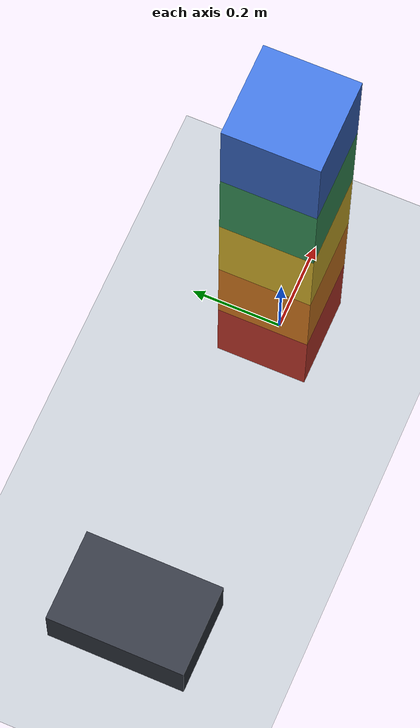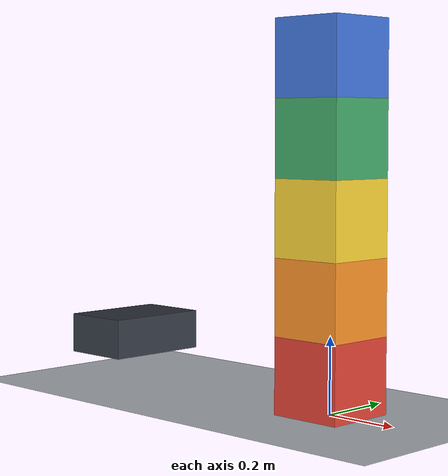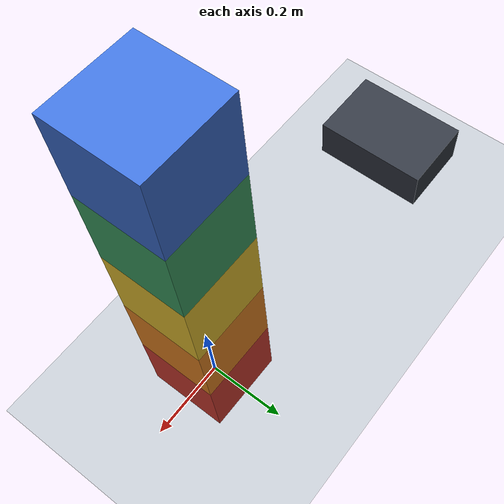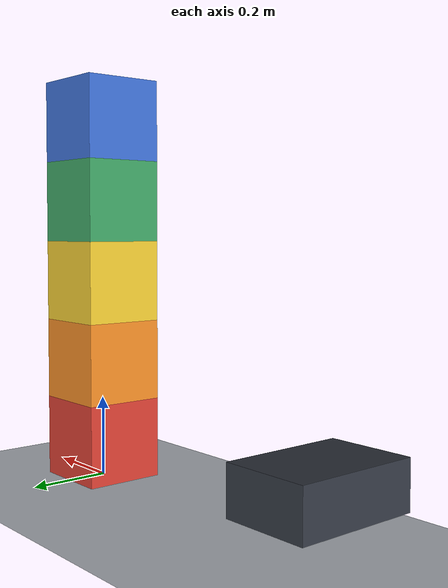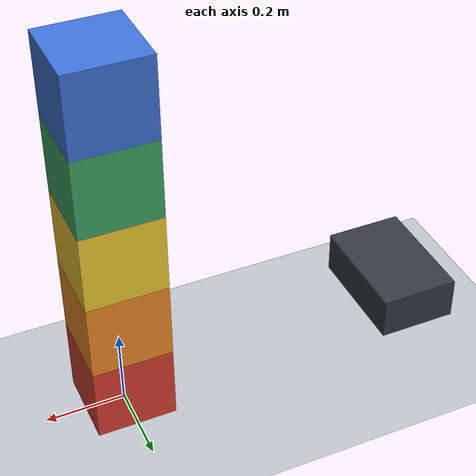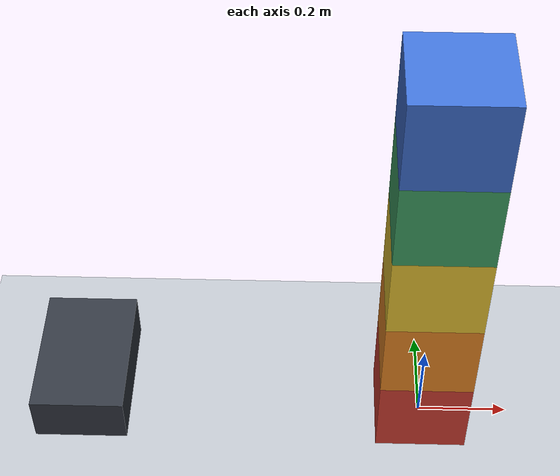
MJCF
<mujoco model="five_block_topple">
  <compiler angle="radian"/>
  <option timestep="0.002" gravity="0 0 -9.81" integrator="implicitfast" solver="Newton" iterations="80" cone="elliptic"/>
  <visual>
    <headlight ambient="0.4 0.4 0.4" diffuse="0.7 0.7 0.7" specular="0.2 0.2 0.2"/>
  </visual>
  <worldbody>
    <light name="overhead" pos="-1 -2 4" dir="0.2 0.3 -1"/>
    <camera name="overview" pos="2.6 -3.5 2.0" xyaxes="0.803 0.596 0 -0.190 0.256 0.948"/>
    <geom name="floor" type="plane" size="5 5 0.1" rgba="0.75 0.77 0.80 1" friction="0.85 0.01 0.001" condim="3" solref="0.008 1"/>

    <body name="block1" pos="0 0 0.1">
      <freejoint name="block1_free"/>
      <geom name="block1_geom" type="box" size="0.1 0.1 0.1" mass="0.5" rgba="0.85 0.25 0.20 1" friction="0.8 0.01 0.001" condim="3" solref="0.008 1"/>
    </body>
    <body name="block2" pos="0 0 0.3">
      <freejoint name="block2_free"/>
      <geom name="block2_geom" type="box" size="0.1 0.1 0.1" mass="0.5" rgba="0.95 0.55 0.15 1" friction="0.8 0.01 0.001" condim="3" solref="0.008 1"/>
    </body>
    <body name="block3" pos="0 0 0.5">
      <freejoint name="block3_free"/>
      <geom name="block3_geom" type="box" size="0.1 0.1 0.1" mass="0.5" rgba="0.95 0.80 0.20 1" friction="0.8 0.01 0.001" condim="3" solref="0.008 1"/>
    </body>
    <body name="block4" pos="0 0 0.7">
      <freejoint name="block4_free"/>
      <geom name="block4_geom" type="box" size="0.1 0.1 0.1" mass="0.5" rgba="0.25 0.65 0.40 1" friction="0.8 0.01 0.001" condim="3" solref="0.008 1"/>
    </body>
    <body name="block5" pos="0 0 0.9">
      <freejoint name="block5_free"/>
      <geom name="block5_geom" type="box" size="0.1 0.1 0.1" mass="0.5" rgba="0.25 0.45 0.85 1" friction="0.8 0.01 0.001" condim="3" solref="0.008 1"/>
    </body>

    <body name="pusher" pos="-0.75 0 0.135">
      <joint name="pusher_slide" type="slide" axis="1 0 0" limited="true" range="0 1.1" damping="1" solreflimit="0.008 1"/>
      <geom name="pusher_geom" type="box" size="0.1 0.15 0.055" mass="1" rgba="0.20 0.22 0.26 1" friction="0.4 0.01 0.001" condim="3" solref="0.008 1"/>
    </body>
  </worldbody>

  <actuator>
    <velocity name="pusher_motor" joint="pusher_slide" kv="100" ctrllimited="true" ctrlrange="0 0.75" forcelimited="true" forcerange="-45 45"/>
  </actuator>

  <keyframe>
    <key name="start" qpos="0 0 0.1 1 0 0 0  0 0 0.3 1 0 0 0  0 0 0.5 1 0 0 0  0 0 0.7 1 0 0 0  0 0 0.9 1 0 0 0  0" ctrl="0.75"/>
  </keyframe>
</mujoco>
